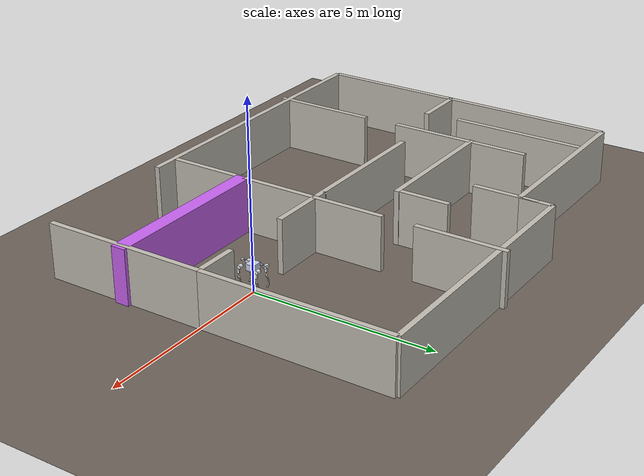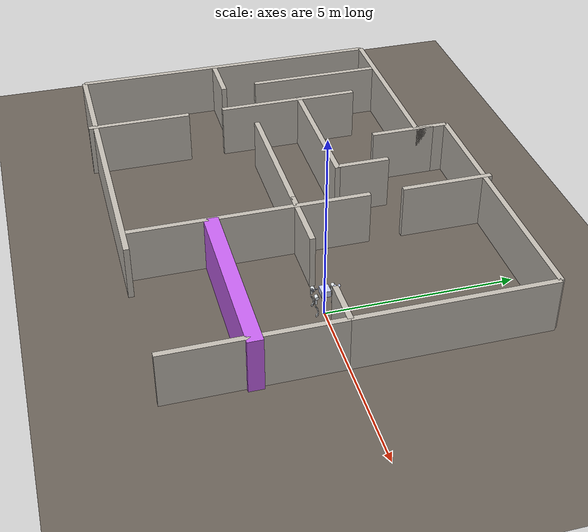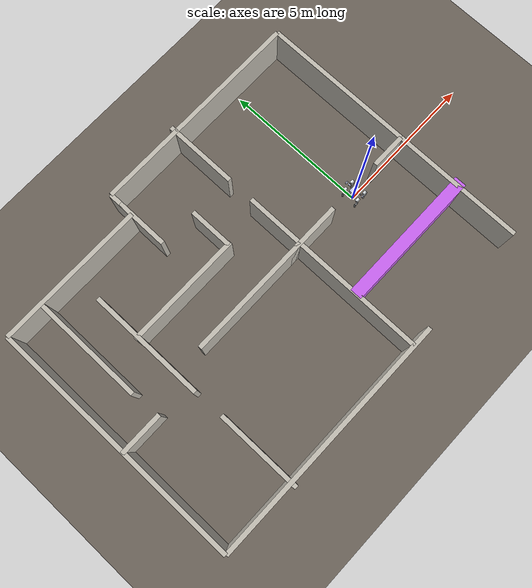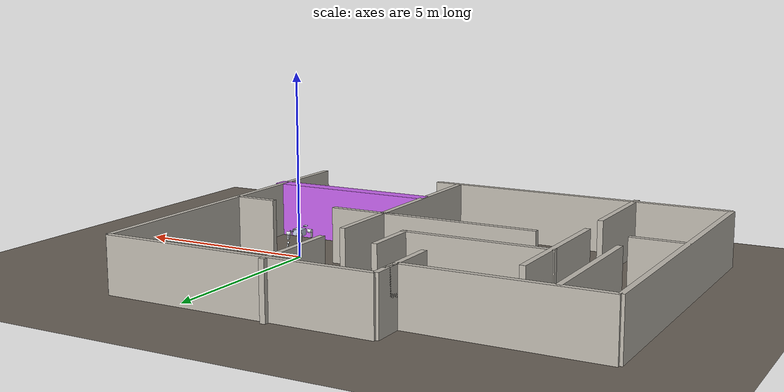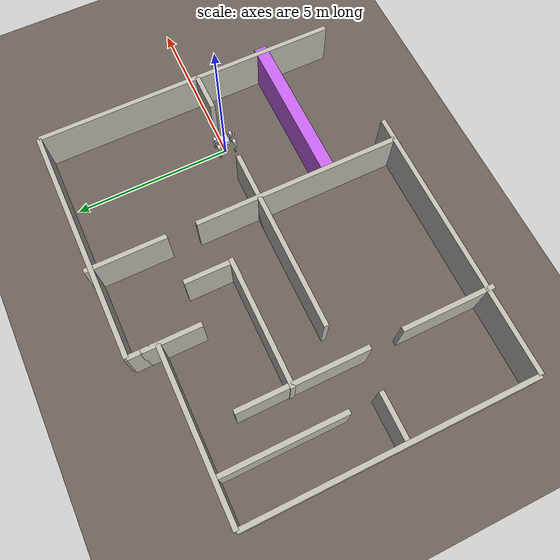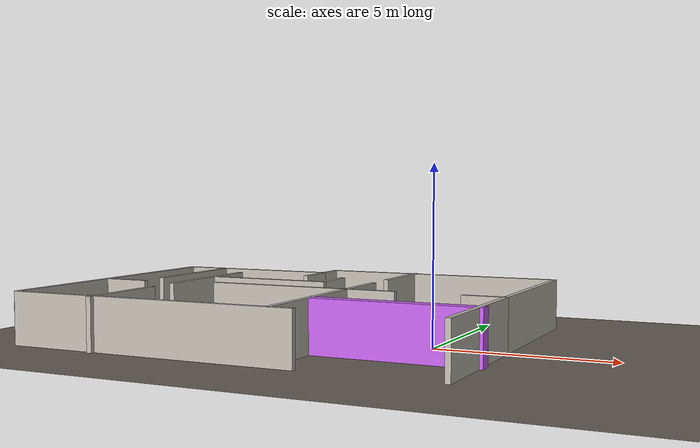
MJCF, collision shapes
<mujoco model="a2 maze v2 bar">
  <include file="a2_rotated.xml"/>

  <statistic center="-4.25 0.35 0.5" extent="7.5"/>

  <visual>
    <headlight diffuse="0.60 0.60 0.60" ambient="0.30 0.30 0.30" specular="0 0 0"/>
    <rgba haze="0.15 0.20 0.25 1"/>
    <global azimuth="-130" elevation="-20"/>
  </visual>

  <asset>
    <texture type="skybox" builtin="gradient" rgb1="0.3 0.5 0.7" rgb2="0 0 0" width="512" height="3072"/>
    <texture type="2d" name="groundplane" builtin="checker" mark="edge"
      rgb1="0.48 0.44 0.40" rgb2="0.36 0.33 0.30" markrgb="0.62 0.58 0.54" width="300" height="300"/>
    <material name="groundplane" texture="groundplane" texuniform="true" texrepeat="5 5" reflectance="0.12"/>
    <material name="wall" rgba="0.76 0.74 0.70 1"/>

    <mesh name="umbrella_mesh"  file="umbrella.obj"  scale="0.1  0.1  0.1"/>
    <mesh name="backpack_mesh"  file="backpack.obj"  scale="1    1    1"/>
    <mesh name="wallclock_mesh" file="wallclock.obj" scale="0.01 0.01 0.01"/>

    <texture name="umbrella_tex"  type="2d" file="meshes/umbrella.png"/>
    <material name="umbrella_mat" texture="umbrella_tex"/>
    <texture name="wallclock_tex" type="2d" file="meshes/wallclock.png"/>
    <material name="wallclock_mat" texture="wallclock_tex"/>
  </asset>

  <worldbody>
    <light pos="-9.0  2.5  4.0" dir="0 0 -1" directional="false" diffuse="0.50 0.48 0.45" specular="0.04 0.04 0.04"/>
    <light pos="-9.0 -2.0  4.0" dir="0 0 -1" directional="false" diffuse="0.50 0.48 0.45" specular="0.04 0.04 0.04"/>
    <light pos="-4.0  3.0  4.0" dir="0 0 -1" directional="false" diffuse="0.50 0.48 0.45" specular="0.04 0.04 0.04"/>
    <light pos="-4.0 -2.0  4.0" dir="0 0 -1" directional="false" diffuse="0.50 0.48 0.45" specular="0.04 0.04 0.04"/>
    <light pos=" 0.0  2.5  4.0" dir="0 0 -1" directional="false" diffuse="0.50 0.48 0.45" specular="0.04 0.04 0.04"/>

    <geom name="floor" size="0 0 0.05" type="plane" material="groundplane"/>

    <!-- ===== Outer boundary ===== -->
    <geom name="north"      material="wall" pos="-1.7   5.2   0.75" type="box" size="3.7   0.075 0.75"/>
    <geom name="east_hi"    material="wall" pos=" 2.0   2.6   0.75" type="box" size="0.075 2.6   0.75"/>
    <geom name="east_lo"    material="wall" pos=" 2.0  -2.25  0.75" type="box" size="0.075 2.25  0.75"/>
    <geom name="step"       material="wall" pos="-5.4   4.75  0.75" type="box" size="0.075 0.45  0.75"/>
    <geom name="wing_n"     material="wall" pos="-7.95  4.3   0.75" type="box" size="2.55  0.075 0.75"/>
    <geom name="west"       material="wall" pos="-10.5  -0.1  0.75" type="box" size="0.075 4.4   0.75"/>
    <geom name="south_lo"   material="wall" pos="-6.19  -4.5  0.75" type="box" size="4.31  0.075 0.75"/>
    <!-- south entrance: gap x∈[-1.1, +0.8] = 1.9 m -->
    <geom name="south_up_w" material="wall" pos="-4.0   0.0   0.75" type="box" size="2.9   0.075 0.75"/>
    <geom name="south_up_e" material="wall" pos=" 1.4   0.0   0.75" type="box" size="0.6   0.075 0.75"/>

    <!-- ===== Interior walls (from scene_maze.json) ===== -->

    <!-- hw_a: Y-aligned vertical wall x=-7.9, y∈[-0.8, +3.2] -->
    <geom name="hw_a"       material="wall" pos="-7.9   1.2   0.75" type="box" size="0.075 2.0   0.75"/>
    <!-- hw_b: X-aligned horizontal wall y=+1.54, x∈[-8.0, -4.0] -->
    <geom name="hw_b"       material="wall" pos="-6.0   1.54  0.75" type="box" size="2.0   0.075 0.75"/>
    <!-- hw_c: small X-aligned stub x∈[-3.0, -2.6] near y=0 -->
    <geom name="hw_c"       material="wall" pos="-2.8   0.0   0.75" type="box" size="0.2   0.075 0.75"/>

    <!-- w2p6: x=-2.6 divider — gap y∈[+2.0,+2.9] (0.9 m) -->
    <geom name="w2p6_a"     material="wall" pos="-2.6  -1.25  0.75" type="box" size="0.075 3.25  0.75"/>
    <geom name="w2p6_b"     material="wall" pos="-2.6   4.15  0.75" type="box" size="0.075 1.25  0.75"/>

    <!-- w5p4_lo_b: Y-aligned wall x=-9.16, y∈[+0.48, +4.28] -->
    <geom name="w5p4_lo_b"  material="wall" pos="-9.16  2.38  0.75" type="box" size="0.075 1.9   0.75"/>
    <!-- w5p4_hi_a: X-aligned wall x∈[-10.55, -9.05], y=-0.49 -->
    <geom name="w5p4_hi_a"  material="wall" pos="-9.8  -0.49  0.75" type="box" size="0.75  0.075 0.75"/>
    <!-- w5p4_hi_b: Y-aligned wall x=-5.4, y∈[+3.0, +4.8] -->
    <geom name="w5p4_hi_b"  material="wall" pos="-5.4   3.9   0.75" type="box" size="0.075 0.9   0.75"/>

    <!-- w6p8_a: Y-aligned wall x=-7.86, y∈[-4.70, -1.80] -->
    <geom name="w6p8_a"     material="wall" pos="-7.86 -3.25  0.75" type="box" size="0.075 1.45  0.75"/>
    <!-- w6p8_b: Y-aligned wall x=-4.09, y∈[+1.51, +3.01] -->
    <geom name="w6p8_b"     material="wall" pos="-4.09  2.26  0.75" type="box" size="0.075 0.75  0.75"/>

    <!-- ===== Additional static bar (from scene.json) ===== -->
    <geom name="box_0063" pos="-0.231348 -2.25 0.75" type="box" size="2.4 0.2 0.75" rgba="0.7843137 0.3921569 0.9411765 1"/>

    <!-- ===== Objects ===== -->

  </worldbody>
</mujoco>

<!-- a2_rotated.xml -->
<mujoco model="a2">
  <compiler angle="radian" meshdir="meshes/"/>
  <option gravity="0 0 -9.81" integrator="implicitfast"/>

  <visual>
    <map znear="0.002"/>
  </visual>

  <default>
      <default class="hip_joint">
        <joint damping="0.2" armature="0.03" frictionloss="1.0" />
      </default>
      <default class="thigh_joint">
        <joint damping="0.2" armature="0.03" frictionloss="1.0" />
      </default>
      <default class="calf_joint">
        <joint damping="1.0" armature="0.03" frictionloss="3.0" />
      </default>
      <default class="collision">
        <geom group="3" priority="1" condim="3"/>
      </default>
      <default class="foot">
          <geom group="3" priority="1" condim="6" friction="0.6 0.01 0.01"/>
      </default>
  </default>

  <asset>
    <mesh name="base_link" file="../meshes/base_link.stl"/>
    <mesh name="left_front_Link1" file="../meshes/left_front_Link1.stl"/>
    <mesh name="left_front_Link2" file="../meshes/left_front_Link2.stl"/>
    <mesh name="left_front_Link3" file="../meshes/left_front_Link3.stl"/>
    <mesh name="left_front_Link4" file="../meshes/left_front_Link4.stl"/>
    <mesh name="left_hind_Link1" file="../meshes/left_hind_Link1.stl"/>
    <mesh name="left_hind_Link2" file="../meshes/left_hind_Link2.stl"/>
    <mesh name="left_hind_Link3" file="../meshes/left_hind_Link3.stl"/>
    <mesh name="left_hind_Link4" file="../meshes/left_hind_Link4.stl"/>
    <mesh name="right_front_Link1" file="../meshes/right_front_Link1.stl"/>
    <mesh name="right_front_Link2" file="../meshes/right_front_Link2.stl"/>
    <mesh name="right_front_Link3" file="../meshes/right_front_Link3.stl"/>
    <mesh name="right_front_Link4" file="../meshes/right_front_Link4.stl"/>
    <mesh name="right_hind_Link1" file="../meshes/right_hind_Link1.stl"/>
    <mesh name="right_hind_Link2" file="../meshes/right_hind_Link2.stl"/>
    <mesh name="right_hind_Link3" file="../meshes/right_hind_Link3.stl"/>
    <mesh name="right_hind_Link4" file="../meshes/right_hind_Link4.stl"/>
  </asset>

  <worldbody>
    <body name="base_link" pos="0 0 0.7" quat="0.70710678 0 0 0.70710678">
      <inertial pos="0.00698259 -0.000712858 0.0128895" quat="-0.00152907 0.699583 -0.00252986 0.714546" mass="19.651" diaginertia="0.472398 0.407723 0.141627"/>
      <joint name="floating_base_joint" type="free" limited="false" actuatorfrclimited="false"/>
      <site name="imu" pos="-0.0 0 0.0" />
      <site name="front_lidar_site" pos="0.33767 0.0 0.08134" quat="0.5 0.5 0.5 0.5"/>
      <site name="rear_lidar_site" pos="-0.27997 0.0 0.087337" quat="0.5 0.5 -0.5 -0.5"/>
      <camera name="front_camera" pos="0.3421785 0.0336742 0.0513862" xyaxes="0 -1 0 0 0 1" fovy="77" />
      <geom type="mesh" contype="0" conaffinity="0" group="1" density="0" rgba="0.792157 0.819608 0.933333 1" mesh="base_link"/>
      <geom class="collision" size="0.12 0.14 0.085" pos="0 0 0.007" type="box" rgba="0.792157 0.819608 0.933333 1"/>
      <geom class="collision" size="0.04 0.025 0.01" pos="0.25 0 0.119" type="box" rgba="0.792157 0.819608 0.933333 1"/>
      <geom class="collision" size="0.025 0.015 0.008" pos="-0.22 0 0.119" quat="0.999888 0 -0.0149994 0" type="box" rgba="0.792157 0.819608 0.933333 1"/>
      <geom class="collision" size="0.03 0.05 0.005" pos="0.365 0 0.1" quat="0.939373 0 -0.342898 0" type="box" rgba="0.792157 0.819608 0.933333 1"/>
      <geom class="collision" size="0.0225 0.05 0.005" pos="-0.31 0 0.112" quat="0.939373 0 0.342898 0" type="box" rgba="0.792157 0.819608 0.933333 1"/>
      <body name="FL_hip" pos="0.25944 0.075113 0">
        <inertial pos="-0.002408 -0.01622 0.000239" quat="0.66751 0.421649 0.565191 0.239168" mass="1.62" diaginertia="0.0016644 0.00161602 0.00145995"/>
        <joint name="FL_hip_joint" pos="0 0 0" axis="1 0 0" range="-1.01 1.01" actuatorfrcrange="-120 120" class="hip_joint"/>
        <geom type="mesh" contype="0" conaffinity="0" group="1" density="0" rgba="0.898039 0.917647 0.929412 1" mesh="left_front_Link1"/>
        <body name="FL_thigh" pos="0 0.12779 0">
          <inertial pos="-0.003268 -0.03111 -0.053896" quat="0.993045 0.11348 0.0231928 0.0211279" mass="3.079" diaginertia="0.0293395 0.0280448 0.00383794"/>
          <joint name="FL_thigh_joint" pos="0 0 0" axis="0 1 0" range="-2.34 3.15" actuatorfrcrange="-120 120" class="thigh_joint"/>
          <geom type="mesh" contype="0" conaffinity="0" group="1" density="0" rgba="0.898039 0.917647 0.929412 1" mesh="left_front_Link2"/>
          <geom class="collision" size="0.048 0.06" pos="0 -0.04 0" quat="0.707035 0.707179 0 0" type="cylinder" rgba="0.898039 0.917647 0.929412 1"/>
          <geom class="collision" size="0.0275 0.018 0.085" pos="-0.025 0 -0.09" quat="0.999988 0 0.00499998 0" type="box" rgba="0.898039 0.917647 0.929412 1"/>
          <geom class="collision" size="0.0085 0.025 0.025" pos="-0.022 0 -0.27" quat="0.930508 0 -0.366273 0" type="box" rgba="0.898039 0.917647 0.929412 1"/>
          <body name="FL_calf" pos="0 0 -0.275">
            <inertial pos="0.0102138 -1.99312e-05 -0.136496" quat="0.706884 -0.0119077 -0.0120568 0.707127" mass="0.407" diaginertia="0.00511119 0.00502314 0.000177746"/>
            <joint name="FL_calf_joint" pos="0 0 0" axis="0 1 0" range="-2.77 -0.54" actuatorfrcrange="-180 180" class="calf_joint"/>
            <geom type="mesh" contype="0" conaffinity="0" group="1" density="0" rgba="0.898039 0.917647 0.929412 1" mesh="left_front_Link3"/>
            <geom class="collision" size="0.012 0.015 0.05" pos="0.018 0 -0.08" quat="0.992809 0 -0.119712 0" type="box" rgba="0.898039 0.917647 0.929412 1"/>
            <geom class="collision" size="0.011 0.015 0.04" pos="0.033 0 -0.17" quat="0.999888 0 -0.0149994 0" type="box" rgba="0.898039 0.917647 0.929412 1"/>
            <geom class="collision" size="0.01 0.018 0.03" pos="0.029 0 -0.236" quat="0.995004 0 0.0998334 0" type="box" rgba="0.898039 0.917647 0.929412 1"/>
            <geom class="collision" size="0.005 0.018 0.03" pos="0.008 0 -0.23" quat="0.942755 0 0.333487 0" type="box" rgba="0.898039 0.917647 0.929412 1"/>
            <geom pos="0 0 -0.275" quat="1 0 0 0" type="mesh" contype="0" conaffinity="0" group="1" density="0" rgba="0.698039 0.698039 0.698039 1" mesh="left_front_Link4"/>
            <geom size="0.032" pos="0 0 -0.275" rgba="0.698039 0.698039 0.698039 1" class="foot"/>
          </body>
        </body>
      </body>
      <body name="RL_hip" pos="-0.25944 0.075113 0">
        <inertial pos="0.00327 -0.01622 -9.7e-05" quat="0.358494 0.383537 0.580824 0.622113" mass="1.62" diaginertia="0.00167848 0.00163116 0.00141504"/>
        <joint name="RL_hip_joint" pos="0 0 0" axis="1 0 0" range="-1.01 1.01" actuatorfrcrange="-120 120" class="hip_joint"/>
        <geom type="mesh" contype="0" conaffinity="0" group="1" density="0" rgba="0.898039 0.917647 0.929412 1" mesh="left_hind_Link1"/>
        <body name="RL_thigh" pos="0 0.12779 0">
          <inertial pos="-0.003268 -0.03111 -0.053896" quat="0.993045 0.11348 0.0231928 0.0211279" mass="3.079" diaginertia="0.0293395 0.0280448 0.00383794"/>
          <joint name="RL_thigh_joint" pos="0 0 0" axis="0 1 0" range="-1.56 3.94" actuatorfrcrange="-120 120" class="thigh_joint"/>
          <geom type="mesh" contype="0" conaffinity="0" group="1" density="0" rgba="0.898039 0.917647 0.929412 1" mesh="left_hind_Link2"/>
          <geom class="collision" size="0.048 0.06" pos="0 -0.04 0" quat="0.707035 0.707179 0 0" type="cylinder" rgba="0.898039 0.917647 0.929412 1"/>
          <geom class="collision" size="0.0275 0.018 0.085" pos="-0.025 0 -0.09" quat="0.999988 0 0.00499998 0" type="box" rgba="0.898039 0.917647 0.929412 1"/>
          <geom class="collision" size="0.0085 0.025 0.025" pos="-0.022 0 -0.27" quat="0.930508 0 -0.366273 0" type="box" rgba="0.898039 0.917647 0.929412 1"/>
          <body name="RL_calf" pos="0 0 -0.275">
            <inertial pos="0.0102138 -1.99312e-05 -0.136496" quat="0.706884 -0.0119077 -0.0120568 0.707127" mass="0.407" diaginertia="0.00511119 0.00502314 0.000177746"/>
            <joint name="RL_calf_joint" pos="0 0 0" axis="0 1 0" range="-2.77 -0.54" actuatorfrcrange="-180 180" class="calf_joint"/>
            <geom type="mesh" contype="0" conaffinity="0" group="1" density="0" rgba="0.898039 0.917647 0.929412 1" mesh="left_hind_Link3"/>
            <geom class="collision" size="0.012 0.015 0.05" pos="0.018 0 -0.08" quat="0.992809 0 -0.119712 0" type="box" rgba="0.898039 0.917647 0.929412 1"/>
            <geom class="collision" size="0.011 0.015 0.04" pos="0.033 0 -0.17" quat="0.999888 0 -0.0149994 0" type="box" rgba="0.898039 0.917647 0.929412 1"/>
            <geom class="collision" size="0.01 0.018 0.03" pos="0.029 0 -0.236" quat="0.995004 0 0.0998334 0" type="box" rgba="0.898039 0.917647 0.929412 1"/>
            <geom class="collision" size="0.005 0.018 0.03" pos="0.008 0 -0.23" quat="0.942755 0 0.333487 0" type="box" rgba="0.898039 0.917647 0.929412 1"/>
            <geom pos="0 0 -0.275" quat="1 0 0 0" type="mesh" contype="0" conaffinity="0" group="1" density="0" rgba="0.698039 0.698039 0.698039 1" mesh="left_hind_Link4"/>
            <geom size="0.032" pos="0 0 -0.275" rgba="0.698039 0.698039 0.698039 1" class="foot"/>
          </body>
        </body>
      </body>
      <body name="FR_hip" pos="0.25944 -0.075113 0">
        <inertial pos="-0.002465 0.01622 0.000318" quat="0.244263 0.553086 0.449878 0.657299" mass="1.62" diaginertia="0.0016672 0.00160755 0.00146457"/>
        <joint name="FR_hip_joint" pos="0 0 0" axis="1 0 0" range="-1.01 1.01" actuatorfrcrange="-120 120" class="hip_joint"/>
        <geom type="mesh" contype="0" conaffinity="0" group="1" density="0" rgba="0.898039 0.917647 0.929412 1" mesh="right_front_Link1"/>
        <body name="FR_thigh" pos="0 -0.12779 0">
          <inertial pos="-0.003256 0.031125 -0.053921" quat="0.993054 -0.113587 0.0234158 -0.0198545" mass="3.077" diaginertia="0.029323 0.028038 0.00383842"/>
          <joint name="FR_thigh_joint" pos="0 0 0" axis="0 1 0" range="-2.34 3.15" actuatorfrcrange="-120 120" class="thigh_joint"/>
          <geom type="mesh" contype="0" conaffinity="0" group="1" density="0" rgba="0.898039 0.917647 0.929412 1" mesh="right_front_Link2"/>
          <geom class="collision" size="0.048 0.06" pos="0 0.04 0" quat="0.707035 0.707179 0 0" type="cylinder" rgba="0.898039 0.917647 0.929412 1"/>
          <geom class="collision" size="0.0275 0.018 0.085" pos="-0.025 0 -0.09" quat="0.999988 0 0.00499998 0" type="box" rgba="0.898039 0.917647 0.929412 1"/>
          <geom class="collision" size="0.0085 0.025 0.025" pos="-0.022 0 -0.27" quat="0.930508 0 -0.366273 0" type="box" rgba="0.898039 0.917647 0.929412 1"/>
          <body name="FR_calf" pos="0 0 -0.275">
            <inertial pos="0.0102138 1.55479e-05 -0.136496" quat="0.707151 -0.0120743 -0.0118903 0.706859" mass="0.407" diaginertia="0.00511119 0.00502314 0.000177746"/>
            <joint name="FR_calf_joint" pos="0 0 0" axis="0 1 0" range="-2.77 -0.54" actuatorfrcrange="-180 180" class="calf_joint"/>
            <geom type="mesh" contype="0" conaffinity="0" group="1" density="0" rgba="0.898039 0.917647 0.929412 1" mesh="right_front_Link3"/>
            <geom class="collision" size="0.012 0.015 0.05" pos="0.018 0 -0.08" quat="0.992809 0 -0.119712 0" type="box" rgba="0.898039 0.917647 0.929412 1"/>
            <geom class="collision" size="0.011 0.015 0.04" pos="0.033 0 -0.17" quat="0.999888 0 -0.0149994 0" type="box" rgba="0.898039 0.917647 0.929412 1"/>
            <geom class="collision" size="0.01 0.018 0.03" pos="0.029 0 -0.236" quat="0.995004 0 0.0998334 0" type="box" rgba="0.898039 0.917647 0.929412 1"/>
            <geom class="collision" size="0.005 0.018 0.03" pos="0.008 0 -0.23" quat="0.942755 0 0.333487 0" type="box" rgba="0.898039 0.917647 0.929412 1"/>
            <geom pos="0 0 -0.275" quat="1 0 0 0" type="mesh" contype="0" conaffinity="0" group="1" density="0" rgba="0.698039 0.698039 0.698039 1" mesh="right_front_Link4"/>
            <geom size="0.032" pos="0 0 -0.275" rgba="0.698039 0.698039 0.698039 1" class="foot"/>
          </body>
        </body>
      </body>
      <body name="RR_hip" pos="-0.25944 -0.075113 0">
        <inertial pos="0.00327 0.01622 -3.7e-05" quat="0.616206 0.585144 0.36648 0.378931" mass="1.62" diaginertia="0.00167769 0.00163476 0.00141225"/>
        <joint name="RR_hip_joint" pos="0 0 0" axis="1 0 0" range="-1.01 1.01" actuatorfrcrange="-120 120" class="hip_joint"/>
        <geom type="mesh" contype="0" conaffinity="0" group="1" density="0" rgba="0.898039 0.917647 0.929412 1" mesh="right_hind_Link1"/>
        <body name="RR_thigh" pos="0 -0.12779 0">
          <inertial pos="-0.003256 0.031125 -0.053921" quat="0.993054 -0.113587 0.0234158 -0.0198545" mass="3.077" diaginertia="0.029323 0.028038 0.00383842"/>
          <joint name="RR_thigh_joint" pos="0 0 0" axis="0 1 0" range="-1.56 3.94" actuatorfrcrange="-120 120" class="thigh_joint"/>
          <geom type="mesh" contype="0" conaffinity="0" group="1" density="0" rgba="0.898039 0.917647 0.929412 1" mesh="right_hind_Link2"/>
          <geom class="collision" size="0.048 0.06" pos="0 0.04 0" quat="0.707035 0.707179 0 0" type="cylinder" rgba="0.898039 0.917647 0.929412 1"/>
          <geom class="collision" size="0.0275 0.018 0.085" pos="-0.025 0 -0.09" quat="0.999988 0 0.00499998 0" type="box" rgba="0.898039 0.917647 0.929412 1"/>
          <geom class="collision" size="0.0085 0.025 0.025" pos="-0.022 0 -0.27" quat="0.930508 0 -0.366273 0" type="box" rgba="0.898039 0.917647 0.929412 1"/>
          <body name="RR_calf" pos="0 0 -0.275">
            <inertial pos="0.0102138 1.55479e-05 -0.136496" quat="0.707151 -0.0120743 -0.0118903 0.706859" mass="0.407" diaginertia="0.00511119 0.00502314 0.000177746"/>
            <joint name="RR_calf_joint" pos="0 0 0" axis="0 1 0" range="-2.77 -0.54" actuatorfrcrange="-180 180" class="calf_joint"/>
            <geom type="mesh" contype="0" conaffinity="0" group="1" density="0" rgba="0.898039 0.917647 0.929412 1" mesh="right_hind_Link3"/>
            <geom class="collision" size="0.012 0.015 0.05" pos="0.018 0 -0.08" quat="0.992809 0 -0.119712 0" type="box" rgba="0.898039 0.917647 0.929412 1"/>
            <geom class="collision" size="0.011 0.015 0.04" pos="0.033 0 -0.17" quat="0.999888 0 -0.0149994 0" type="box" rgba="0.898039 0.917647 0.929412 1"/>
            <geom class="collision" size="0.01 0.018 0.03" pos="0.029 0 -0.236" quat="0.995004 0 0.0998334 0" type="box" rgba="0.898039 0.917647 0.929412 1"/>
            <geom class="collision" size="0.005 0.018 0.03" pos="0.008 0 -0.23" quat="0.942755 0 0.333487 0" type="box" rgba="0.898039 0.917647 0.929412 1"/>
            <geom pos="0 0 -0.275" quat="1 0 0 0" type="mesh" contype="0" conaffinity="0" group="1" density="0" rgba="0.698039 0.698039 0.698039 1" mesh="right_hind_Link4"/>
            <geom size="0.032" pos="0 0 -0.275" rgba="0.698039 0.698039 0.698039 1" class="foot"/>
          </body>
        </body>
      </body>
    </body>
  </worldbody>

  <actuator>
    <motor ctrlrange="-120 120"  name="FR_hip" joint="FR_hip_joint"/>
    <motor ctrlrange="-120 120"  name="FR_thigh" joint="FR_thigh_joint"/>
    <motor ctrlrange="-180 180"  name="FR_calf" joint="FR_calf_joint"/>
    <motor ctrlrange="-120 120"  name="FL_hip" joint="FL_hip_joint"/>
    <motor ctrlrange="-120 120"  name="FL_thigh" joint="FL_thigh_joint"/>
    <motor ctrlrange="-180 180" name="FL_calf" joint="FL_calf_joint"/>
    <motor ctrlrange="-120 120"  name="RR_hip" joint="RR_hip_joint"/>
    <motor ctrlrange="-120 120"  name="RR_thigh" joint="RR_thigh_joint"/>
    <motor ctrlrange="-180 180" name="RR_calf" joint="RR_calf_joint"/>
    <motor ctrlrange="-120 120"  name="RL_hip" joint="RL_hip_joint"/>
    <motor ctrlrange="-120 120"  name="RL_thigh" joint="RL_thigh_joint"/>
    <motor ctrlrange="-180 180" name="RL_calf" joint="RL_calf_joint"/>
  </actuator>

  <sensor>
    <jointpos name="FR_hip_pos" joint="FR_hip_joint" />
    <jointpos name="FR_thigh_pos" joint="FR_thigh_joint" />
    <jointpos name="FR_calf_pos" joint="FR_calf_joint" />
    <jointpos name="FL_hip_pos" joint="FL_hip_joint" />
    <jointpos name="FL_thigh_pos" joint="FL_thigh_joint" />
    <jointpos name="FL_calf_pos" joint="FL_calf_joint" />
    <jointpos name="RR_hip_pos" joint="RR_hip_joint" />
    <jointpos name="RR_thigh_pos" joint="RR_thigh_joint" />
    <jointpos name="RR_calf_pos" joint="RR_calf_joint" />
    <jointpos name="RL_hip_pos" joint="RL_hip_joint" />
    <jointpos name="RL_thigh_pos" joint="RL_thigh_joint" />
    <jointpos name="RL_calf_pos" joint="RL_calf_joint" />

    <jointvel name="FR_hip_vel" joint="FR_hip_joint" />
    <jointvel name="FR_thigh_vel" joint="FR_thigh_joint" />
    <jointvel name="FR_calf_vel" joint="FR_calf_joint" />
    <jointvel name="FL_hip_vel" joint="FL_hip_joint" />
    <jointvel name="FL_thigh_vel" joint="FL_thigh_joint" />
    <jointvel name="FL_calf_vel" joint="FL_calf_joint" />
    <jointvel name="RR_hip_vel" joint="RR_hip_joint" />
    <jointvel name="RR_thigh_vel" joint="RR_thigh_joint" />
    <jointvel name="RR_calf_vel" joint="RR_calf_joint" />
    <jointvel name="RL_hip_vel" joint="RL_hip_joint" />
    <jointvel name="RL_thigh_vel" joint="RL_thigh_joint" />
    <jointvel name="RL_calf_vel" joint="RL_calf_joint" />

    <jointactuatorfrc name="FR_hip_torque" joint="FR_hip_joint" noise="0.01" />
    <jointactuatorfrc name="FR_thigh_torque" joint="FR_thigh_joint" noise="0.01" />
    <jointactuatorfrc name="FR_calf_torque" joint="FR_calf_joint" noise="0.01" />
    <jointactuatorfrc name="FL_hip_torque" joint="FL_hip_joint" noise="0.01" />
    <jointactuatorfrc name="FL_thigh_torque" joint="FL_thigh_joint" noise="0.01" />
    <jointactuatorfrc name="FL_calf_torque" joint="FL_calf_joint" noise="0.01" />
    <jointactuatorfrc name="RR_hip_torque" joint="RR_hip_joint" noise="0.01" />
    <jointactuatorfrc name="RR_thigh_torque" joint="RR_thigh_joint" noise="0.01" />
    <jointactuatorfrc name="RR_calf_torque" joint="RR_calf_joint" noise="0.01" />
    <jointactuatorfrc name="RL_hip_torque" joint="RL_hip_joint" noise="0.01" />
    <jointactuatorfrc name="RL_thigh_torque" joint="RL_thigh_joint" noise="0.01" />
    <jointactuatorfrc name="RL_calf_torque" joint="RL_calf_joint" noise="0.01" />

    <framequat name="imu_quat" objtype="site" objname="imu" noise="0.01" />
    <gyro name="imu_gyro" site="imu" noise="0.01" />
    <accelerometer name="imu_acc" site="imu" noise="0.01" />

    <framepos name="frame_pos" objtype="site" objname="imu" />
    <framelinvel name="frame_vel" objtype="site" objname="imu" />
  </sensor>

</mujoco>
